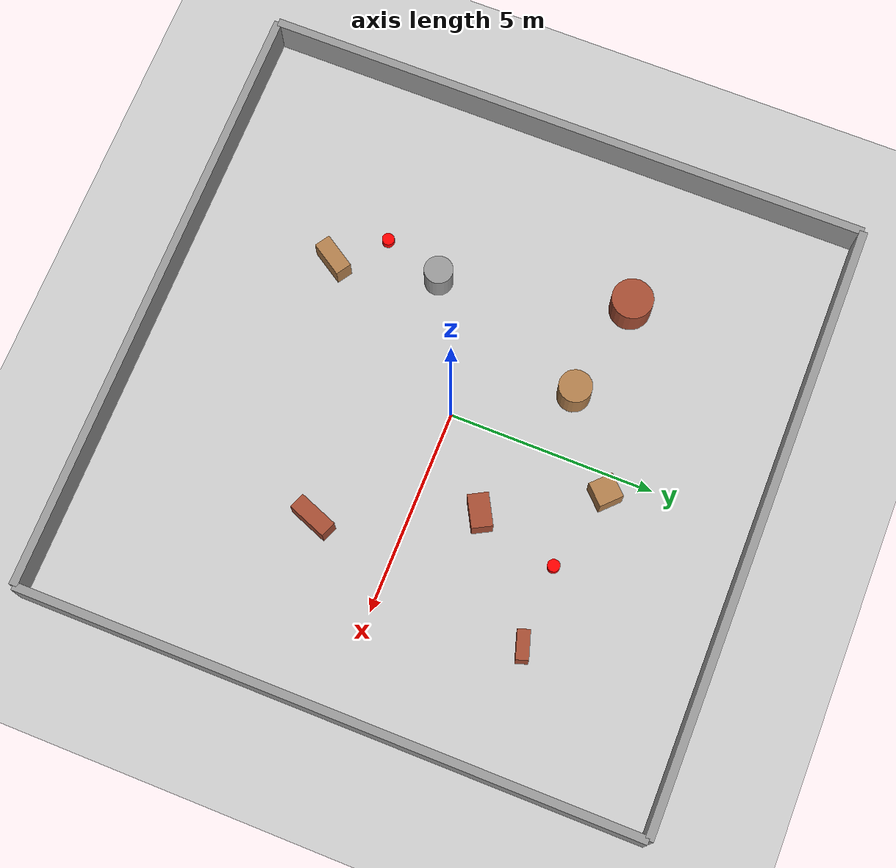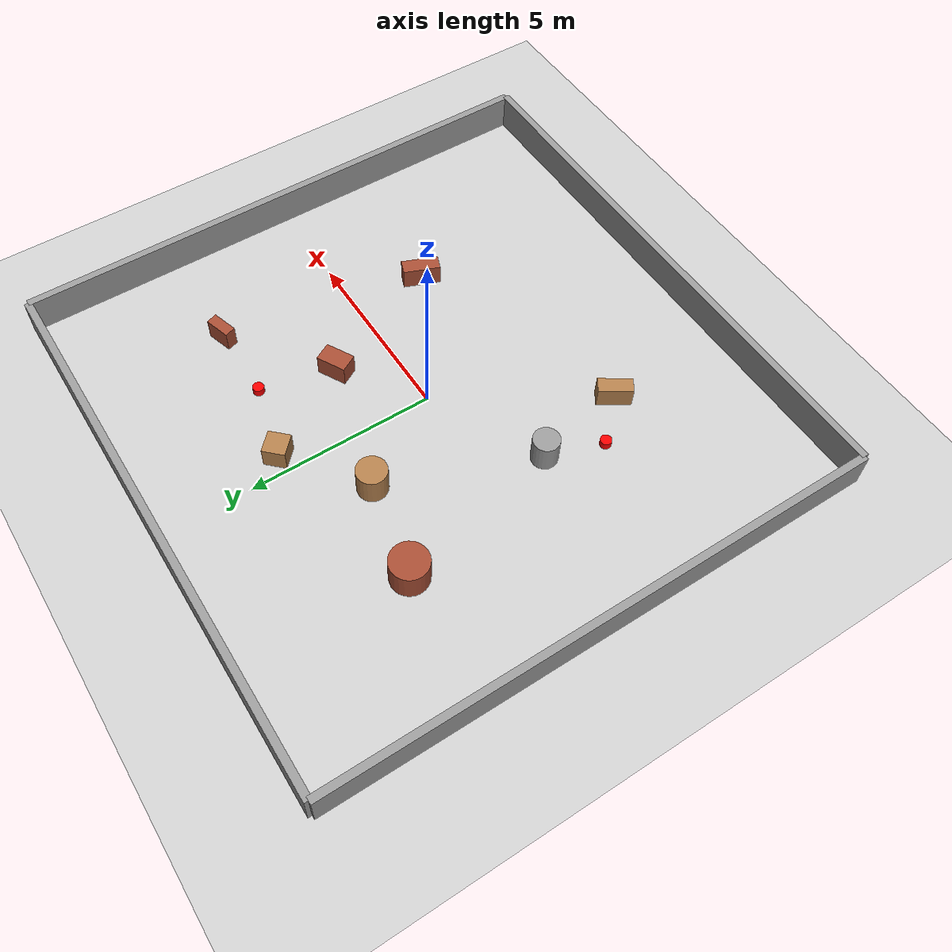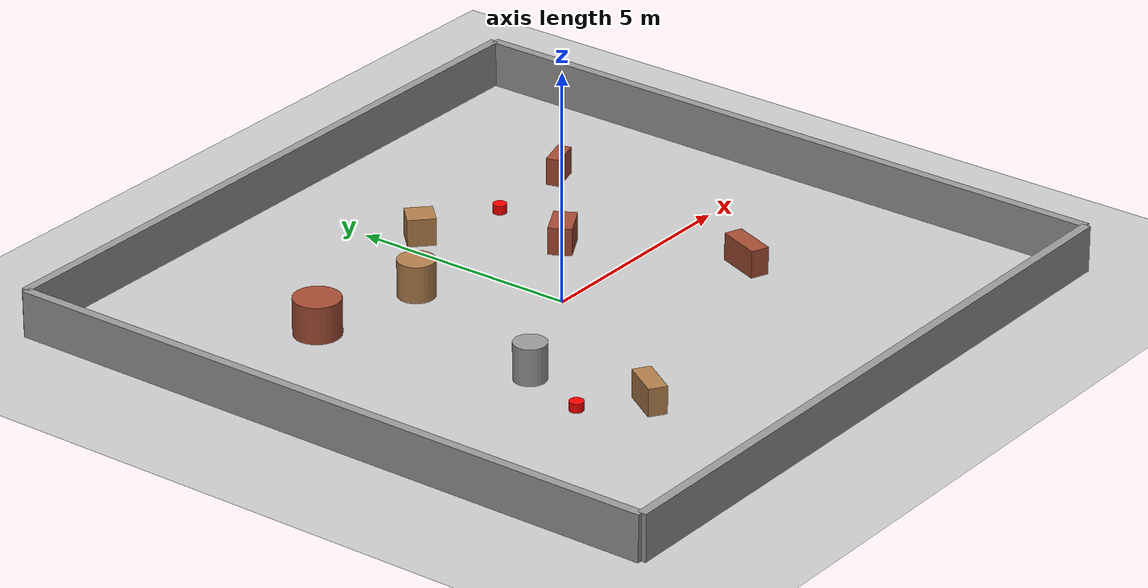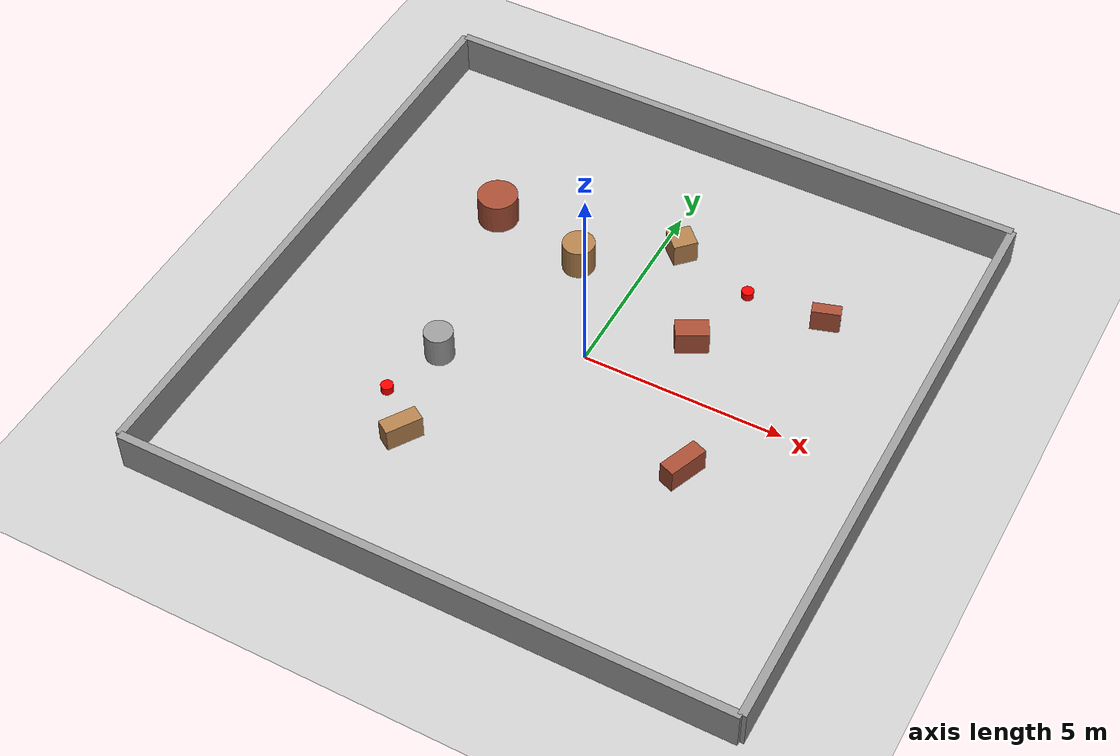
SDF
<?xml version="1.0"?>
<sdf version="1.6">
  <world name="disaster_zone">
    <physics name="ode" type="ode" default="true">
      <max_step_size>0.001</max_step_size>
      <real_time_factor>1.0</real_time_factor>
      <real_time_update_rate>1000</real_time_update_rate>
    </physics>
    <light name="sun" type="directional">
      <cast_shadows>true</cast_shadows>
      <pose>0 0 15 0 0 0</pose>
      <diffuse>0.6 0.6 0.6 1</diffuse>
      <direction>-0.3 0.1 -0.9</direction>
    </light>
    <!-- 地面 -->
    <model name="ground"><static>true</static>
      <link name="l">
        <collision name="c"><geometry><plane><normal>0 0 1</normal>
          <size>40 40</size></plane></geometry>
          <surface><friction><ode><mu>0.6</mu><mu2>0.6</mu2></ode></friction></surface>
        </collision>
        <visual name="v"><geometry><plane><normal>0 0 1</normal>
          <size>40 40</size></plane></geometry>
          <material><script><name>Gazebo/Concrete</name></script></material>
        </visual>
      </link>
    </model>
    <!-- 封闭边界 15x15m -->
    <model name="wn"><static>true</static><pose>0 7.5 0.5 0 0 0</pose>
      <link name="l"><collision name="c"><geometry><box><size>15 0.2 1</size></box></geometry></collision>
      <visual name="v"><geometry><box><size>15 0.2 1</size></box></geometry>
        <material><script><name>Gazebo/Grey</name></script></material></visual></link></model>
    <model name="ws"><static>true</static><pose>0 -7.5 0.5 0 0 0</pose>
      <link name="l"><collision name="c"><geometry><box><size>15 0.2 1</size></box></geometry></collision>
      <visual name="v"><geometry><box><size>15 0.2 1</size></box></geometry>
        <material><script><name>Gazebo/Grey</name></script></material></visual></link></model>
    <model name="we"><static>true</static><pose>7.5 0 0.5 0 0 0</pose>
      <link name="l"><collision name="c"><geometry><box><size>0.2 15 1</size></box></geometry></collision>
      <visual name="v"><geometry><box><size>0.2 15 1</size></box></geometry>
        <material><script><name>Gazebo/Grey</name></script></material></visual></link></model>
    <model name="ww"><static>true</static><pose>-7.5 0 0.5 0 0 0</pose>
      <link name="l"><collision name="c"><geometry><box><size>0.2 15 1</size></box></geometry></collision>
      <visual name="v"><geometry><box><size>0.2 15 1</size></box></geometry>
        <material><script><name>Gazebo/Grey</name></script></material></visual></link></model>
    <!-- 废墟障碍物 -->
    <model name="d0"><static>true</static><pose>2.0 1.5 0.3 0 0 0.5</pose>
      <link name="l"><collision name="c"><geometry><box><size>0.8 0.5 0.6</size></box></geometry></collision>
      <visual name="v"><geometry><box><size>0.8 0.5 0.6</size></box></geometry>
        <material><script><name>Gazebo/Bricks</name></script></material></visual></link></model>
    <model name="d1"><static>true</static><pose>-1.5 2.5 0.4 0 0 0</pose>
      <link name="l"><collision name="c"><geometry><cylinder><radius>0.4</radius><length>0.8</length></cylinder></geometry></collision>
      <visual name="v"><geometry><cylinder><radius>0.4</radius><length>0.8</length></cylinder></geometry>
        <material><script><name>Gazebo/WoodFloor</name></script></material></visual></link></model>
    <model name="d2"><static>true</static><pose>3.5 -2.0 0.3 0 0 1.2</pose>
      <link name="l"><collision name="c"><geometry><box><size>1.0 0.4 0.6</size></box></geometry></collision>
      <visual name="v"><geometry><box><size>1.0 0.4 0.6</size></box></geometry>
        <material><script><name>Gazebo/Bricks</name></script></material></visual></link></model>
    <model name="d3"><static>true</static><pose>-3.0 -1.5 0.4 0 0 0</pose>
      <link name="l"><collision name="c"><geometry><cylinder><radius>0.35</radius><length>0.8</length></cylinder></geometry></collision>
      <visual name="v"><geometry><cylinder><radius>0.35</radius><length>0.8</length></cylinder></geometry>
        <material><script><name>Gazebo/Grey</name></script></material></visual></link></model>
    <model name="d4"><static>true</static><pose>0.5 4.0 0.3 0 0 0.8</pose>
      <link name="l"><collision name="c"><geometry><box><size>0.6 0.6 0.6</size></box></geometry></collision>
      <visual name="v"><geometry><box><size>0.6 0.6 0.6</size></box></geometry>
        <material><script><name>Gazebo/WoodFloor</name></script></material></visual></link></model>
    <model name="d5"><static>true</static><pose>-4.0 3.0 0.4 0 0 0</pose>
      <link name="l"><collision name="c"><geometry><cylinder><radius>0.5</radius><length>0.8</length></cylinder></geometry></collision>
      <visual name="v"><geometry><cylinder><radius>0.5</radius><length>0.8</length></cylinder></geometry>
        <material><script><name>Gazebo/Bricks</name></script></material></visual></link></model>
    <model name="d6"><static>true</static><pose>4.5 3.5 0.3 0 0 0.3</pose>
      <link name="l"><collision name="c"><geometry><box><size>0.7 0.3 0.6</size></box></geometry></collision>
      <visual name="v"><geometry><box><size>0.7 0.3 0.6</size></box></geometry>
        <material><script><name>Gazebo/Bricks</name></script></material></visual></link></model>
    <model name="d7"><static>true</static><pose>-2.5 -4.0 0.3 0 0 1.0</pose>
      <link name="l"><collision name="c"><geometry><box><size>0.9 0.4 0.6</size></box></geometry></collision>
      <visual name="v"><geometry><box><size>0.9 0.4 0.6</size></box></geometry>
        <material><script><name>Gazebo/WoodFloor</name></script></material></visual></link></model>
    <!-- 幸存者标记（红色圆柱） -->
    <model name="survivor_0"><static>true</static><pose>2.5 3.5 0.1 0 0 0</pose>
      <link name="l"><visual name="v">
        <geometry><cylinder><radius>0.15</radius><length>0.2</length></cylinder></geometry>
        <material><ambient>1 0 0 1</ambient><diffuse>1 0 0 1</diffuse></material>
      </visual></link>
    </model>
    <model name="survivor_1"><static>true</static><pose>-3.5 -3.0 0.1 0 0 0</pose>
      <link name="l"><visual name="v">
        <geometry><cylinder><radius>0.15</radius><length>0.2</length></cylinder></geometry>
        <material><ambient>1 0 0 1</ambient><diffuse>1 0 0 1</diffuse></material>
      </visual></link>
    </model>
    <scene>
      <ambient>0.3 0.3 0.3 1</ambient>
      <background>0.4 0.4 0.4 1</background>
      <shadows>true</shadows>
    </scene>
    <gui><camera name="cam">
      <pose>-10 -10 10 0 0.6 0.785</pose>
      <view_controller>orbit</view_controller>
    </camera></gui>
  </world>
</sdf>
